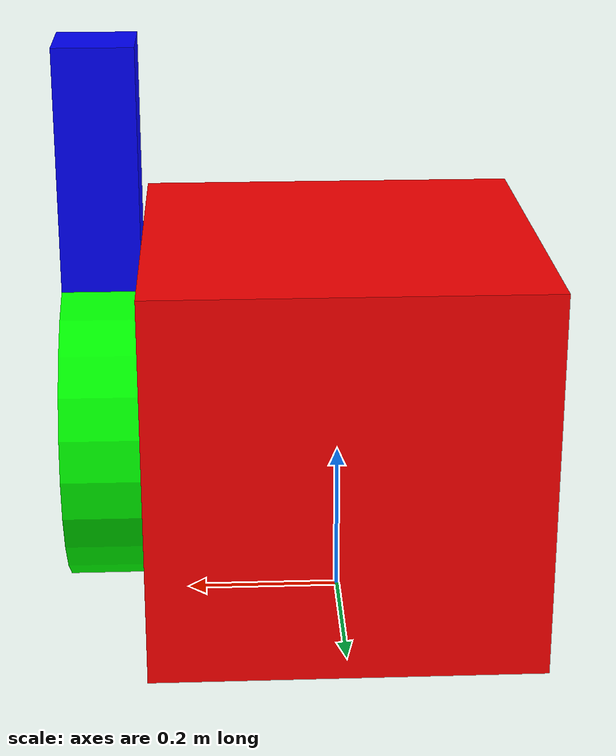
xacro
<?xml version="1.0"?>
<robot xmlns:xacro="http://www.ros.org/wiki/xacro" name="test_single_moteus">

    <xacro:property name="PI" value="3.141592"/>

    <xacro:property name="rotor_inertia" value="1.0"/>
    <xacro:property name="motor_position_max" value="${ PI * 9}"/>
    <xacro:property name="motor_position_min" value="${-PI * 9}"/>
    <xacro:property name="motor_velocity_max" value="2.0"/>
    <xacro:property name="motor_effort_max" value="0.2"/>

    <xacro:property name="transmission_reduction" value="9.0"/>
    <xacro:property name="transmission_offset" value="0.0"/>

    <!-- Single joint macro -->
    <xacro:include filename="core/single_joint.urdf.xacro"/>

    <link name="world"/>

    <xacro:single_joint_macro name="actuator_5" parent_name="world" x="0.0" y="0.0" inertia="${rotor_inertia}" pos_max="${motor_position_max}" pos_min="${motor_position_min}" vel_max="${motor_velocity_max}" effort_max="${motor_effort_max}"/>

    <!-- Hardware interface for pi3hat -->
    <ros2_control name="pi3hat_hardware_interface" type="system">
        <hardware>
            <plugin>pi3hat_hardware_interface/Pi3HatHardwareInterface</plugin>
            <param name="imu_mounting_deg.yaw">0</param>
            <param name="imu_mounting_deg.pitch">0</param>
            <param name="imu_mounting_deg.roll">0</param>
            <param name="imu_sampling_rate">100</param>

            <param name="can_1_fdcan_frame">true</param>
            <param name="can_1_automatic_retransmission">true</param>
            <param name="can_1_bitrate_switch">true</param>

            <param name="can_2_fdcan_frame">true</param>
            <param name="can_2_automatic_retransmission">true</param>
            <param name="can_2_bitrate_switch">true</param>

            <param name="can_3_fdcan_frame">true</param>
            <param name="can_3_automatic_retransmission">true</param>
            <param name="can_3_bitrate_switch">true</param>

            <param name="can_4_fdcan_frame">true</param>
            <param name="can_4_automatic_retransmission">true</param>
            <param name="can_4_bitrate_switch">true</param>

            <param name="can_5_fdcan_frame">true</param>
            <param name="can_5_automatic_retransmission">true</param>
            <param name="can_5_bitrate_switch">true</param>
        </hardware>

        <!-- Single motor hardware macro -->
        <xacro:include filename="core/single_motor_hardware.urdf.xacro"/>

        <xacro:single_motor_hardware_macro name="actuator_5" type="moteus" can_bus="1" can_id="1" direction="1" offset="0.0" pos_max="${motor_position_max}" pos_min="${motor_position_min}" vel_max="${motor_velocity_max}" torque_max="${motor_effort_max}"/>

        <!-- Simple transmission macro -->
        <xacro:include filename="core/simple_transmission_macro.urdf.xacro"/>

        <xacro:simple_transmission_macro transmission_name="transmission_5" actuator_name="actuator_5" joint_name="actuator_5_joint" reduction="${transmission_reduction}" offset="${transmission_offset}"/>

        <sensor name="imu_sensor">
            <state_interface name="orientation.x"/>
            <state_interface name="orientation.y"/>
            <state_interface name="orientation.z"/>
            <state_interface name="orientation.w"/>
            <state_interface name="angular_velocity.x"/>
            <state_interface name="angular_velocity.y"/>
            <state_interface name="angular_velocity.z"/>
            <state_interface name="linear_acceleration.x"/>
            <state_interface name="linear_acceleration.y"/>
            <state_interface name="linear_acceleration.z"/>
        </sensor>
    </ros2_control>
</robot>

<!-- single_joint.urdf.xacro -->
<robot xmlns:xacro="http://www.ros.org/wiki/xacro" name="single_joint_urdf">

<xacro:property name="stator_length" value="0.5"/>
<xacro:property name="rotor_radius" value="0.2"/>
<xacro:property name="rotor_size" value="0.1"/>
<xacro:property name="rotor_length" value="0.5"/>

<xacro:macro name="single_joint_macro" params="name parent_name x y inertia pos_max pos_min vel_max effort_max">

    <link name="${name}_stator">
        <inertial>
            <origin xyz="0.0 0.0 0.0" rpy="0.0 0.0 0.0"/>
            <mass value="10.0"/>
            <inertia ixx="1.0" ixy="0.0" ixz="0.0" iyy="1.0" iyz="0.0" izz="1.0"/>
        </inertial>

        <visual>
            <origin xyz="0.0 0.0 0.0" rpy="0.0 0.0 0.0"/>
            <geometry>
                <box size="${stator_length} ${stator_length} ${stator_length}"/>
            </geometry>
            <material name="">
                <color rgba="1.0 0.0 0.0 1.0"/>
            </material>
        </visual>
    </link>

    <link name="${name}_rotor">
        <inertial>
            <origin xyz="0.0 0.0 0.0" rpy="0.0 0.0 0.0"/>
            <mass value="1.0"/>
            <inertia ixx="1.0" ixy="0.0" ixz="0.0" iyy="1.0" iyz="0.0" izz="${inertia}"/>
        </inertial>

        <visual>
            <origin xyz="0.0 0.0 0.0" rpy="0.0 0.0 0.0"/>
            <geometry>
                <cylinder radius="${rotor_radius}" length="${rotor_size}"/>
            </geometry>
           <material name="">
                <color rgba="0.0 1.0 0.0 1.0"/>
            </material>
        </visual>
        <visual>
            <origin xyz="${-rotor_length/2} 0.0 0.0" rpy="0.0 0.0 0.0"/>
            <geometry>
                <box size="${rotor_length} ${rotor_size} ${rotor_size}"/>
            </geometry>
            <material name="">
                <color rgba="0.0 0.0 1.0 1.0"/>
            </material>
        </visual>
    </link>

    <joint name="${parent_name}_${name}" type="fixed">
        <origin xyz="${x} ${y} ${stator_length/2}" rpy="0.0 0.0 0.0"/>
        <parent link="${parent_name}"/>
        <child link="${name}_stator"/>
    </joint>

    <joint name="${name}_joint" type="revolute">
        <origin xyz="${stator_length/2 + rotor_size/2} 0.0 0.0" rpy="0.0 ${PI/2} 0.0"/>
        <parent link="${name}_stator"/>
        <child link="${name}_rotor"/>
        <axis xyz="0.0 0.0 1.0"/>
        <limit lower="${pos_min}" upper="${pos_max}" effort="${effort_max}" velocity="${vel_max}"/>
    </joint>
</xacro:macro>
</robot>
